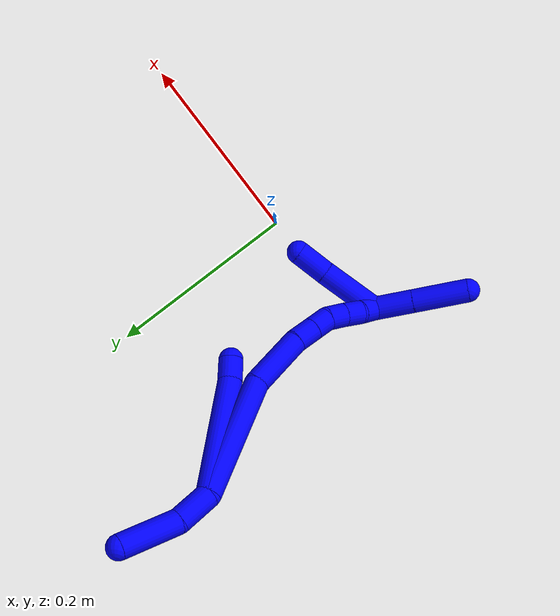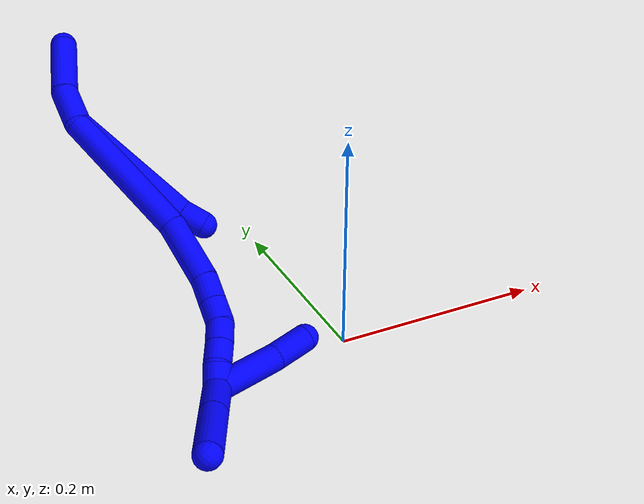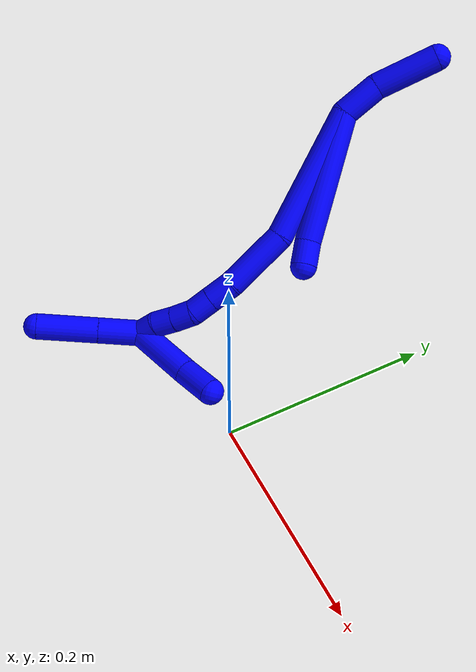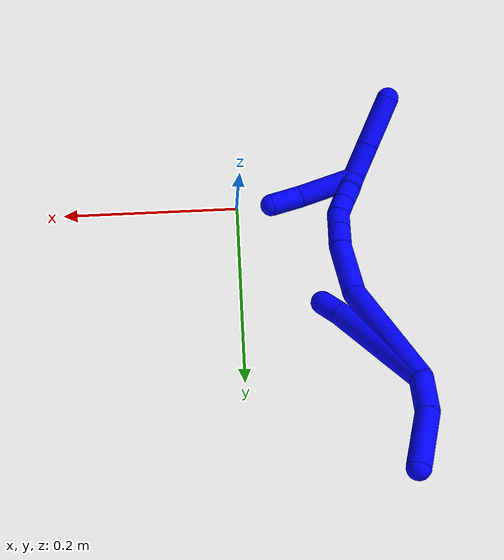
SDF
<sdf version="1.7">
 <world name="default">
  <model name="1">
   <static>0</static>
   <link name="1">
    <collision name="collision-cylinder-e_1_2_8">
     <pose>0.000417 -0.000638 -0.0631 3.13149 0.006603 1.15732</pose>
     <geometry><cylinder><radius>0.0125</radius><length>0.126209</length></cylinder></geometry>
     <surface>
      <friction><ode><mu>1.16</mu><mu2>1.16</mu2><slip1>0</slip1><slip2>0</slip2></ode></friction>
      <contact><ode><kp>1e+06</kp><kd>1</kd><max_vel>0</max_vel><min_depth>0.001</min_depth></ode></contact>
     </surface>
    </collision>
    <visual name="visual-cylinder-e_1_2_8">
     <pose>0.000417 -0.000638 -0.0631 3.13149 0.006603 1.15732</pose>
     <geometry><cylinder><radius>0.0125</radius><length>0.126209</length></cylinder></geometry>
     <material><ambient>0 0 1 1</ambient></material>
    </visual>
    <collision name="collision-cylinder-e_2_8_6">
     <pose>0.003226 -0.001074 -0.13785 -3.12428 0.202552 -2.97163</pose>
     <geometry><cylinder><radius>0.0125</radius><length>0.023791</length></cylinder></geometry>
     <surface>
      <friction><ode><mu>1.16</mu><mu2>1.16</mu2><slip1>0</slip1><slip2>0</slip2></ode></friction>
      <contact><ode><kp>1e+06</kp><kd>1</kd><max_vel>0</max_vel><min_depth>0.001</min_depth></ode></contact>
     </surface>
    </collision>
    <visual name="visual-cylinder-e_2_8_6">
     <pose>0.003226 -0.001074 -0.13785 -3.12428 0.202552 -2.97163</pose>
     <geometry><cylinder><radius>0.0125</radius><length>0.023791</length></cylinder></geometry>
     <material><ambient>0 0 1 1</ambient></material>
    </visual>
    <collision name="collision-cylinder-e_1_2_9">
     <pose>0.005727 0.00984 0.01571 -0.559576 0.299655 -0.086694</pose>
     <geometry><cylinder><radius>0.0125</radius><length>0.038803</length></cylinder></geometry>
     <surface>
      <friction><ode><mu>1.16</mu><mu2>1.16</mu2><slip1>0</slip1><slip2>0</slip2></ode></friction>
      <contact><ode><kp>1e+06</kp><kd>1</kd><max_vel>0</max_vel><min_depth>0.001</min_depth></ode></contact>
     </surface>
    </collision>
    <visual name="visual-cylinder-e_1_2_9">
     <pose>0.005727 0.00984 0.01571 -0.559576 0.299655 -0.086694</pose>
     <geometry><cylinder><radius>0.0125</radius><length>0.038803</length></cylinder></geometry>
     <material><ambient>0 0 1 1</ambient></material>
    </visual>
    <collision name="collision-cylinder-e_2_9_5">
     <pose>0.026149 0.039052 0.049995 -0.806385 0.500922 -0.217397</pose>
     <geometry><cylinder><radius>0.0125</radius><length>0.061197</length></cylinder></geometry>
     <surface>
      <friction><ode><mu>1.16</mu><mu2>1.16</mu2><slip1>0</slip1><slip2>0</slip2></ode></friction>
      <contact><ode><kp>1e+06</kp><kd>1</kd><max_vel>0</max_vel><min_depth>0.001</min_depth></ode></contact>
     </surface>
    </collision>
    <visual name="visual-cylinder-e_2_9_5">
     <pose>0.026149 0.039052 0.049995 -0.806385 0.500922 -0.217397</pose>
     <geometry><cylinder><radius>0.0125</radius><length>0.061197</length></cylinder></geometry>
     <material><ambient>0 0 1 1</ambient></material>
    </visual>
    <collision name="collision-cylinder-e_1_2_10">
     <pose>-0.005009 -0.01286 -0.063945 2.94313 -0.076643 -0.735206</pose>
     <geometry><cylinder><radius>0.0125</radius><length>0.130835</length></cylinder></geometry>
     <surface>
      <friction><ode><mu>1.16</mu><mu2>1.16</mu2><slip1>0</slip1><slip2>0</slip2></ode></friction>
      <contact><ode><kp>1e+06</kp><kd>1</kd><max_vel>0</max_vel><min_depth>0.001</min_depth></ode></contact>
     </surface>
    </collision>
    <visual name="visual-cylinder-e_1_2_10">
     <pose>-0.005009 -0.01286 -0.063945 2.94313 -0.076643 -0.735206</pose>
     <geometry><cylinder><radius>0.0125</radius><length>0.130835</length></cylinder></geometry>
     <material><ambient>0 0 1 1</ambient></material>
    </visual>
    <collision name="collision-cylinder-e_2_10_11">
     <pose>-0.016788 -0.040157 -0.15518 2.65499 -0.215856 -0.823152</pose>
     <geometry><cylinder><radius>0.0125</radius><length>0.063215</length></cylinder></geometry>
     <surface>
      <friction><ode><mu>1.16</mu><mu2>1.16</mu2><slip1>0</slip1><slip2>0</slip2></ode></friction>
      <contact><ode><kp>1e+06</kp><kd>1</kd><max_vel>0</max_vel><min_depth>0.001</min_depth></ode></contact>
     </surface>
    </collision>
    <visual name="visual-cylinder-e_2_10_11">
     <pose>-0.016788 -0.040157 -0.15518 2.65499 -0.215856 -0.823152</pose>
     <geometry><cylinder><radius>0.0125</radius><length>0.063215</length></cylinder></geometry>
     <material><ambient>0 0 1 1</ambient></material>
    </visual>
    <collision name="collision-cylinder-e_3_11_12">
     <pose>-0.02786 -0.061076 -0.191869 2.53787 -0.360433 -1.05882</pose>
     <geometry><cylinder><radius>0.0125</radius><length>0.0244</length></cylinder></geometry>
     <surface>
      <friction><ode><mu>1.16</mu><mu2>1.16</mu2><slip1>0</slip1><slip2>0</slip2></ode></friction>
      <contact><ode><kp>1e+06</kp><kd>1</kd><max_vel>0</max_vel><min_depth>0.001</min_depth></ode></contact>
     </surface>
    </collision>
    <visual name="visual-cylinder-e_3_11_12">
     <pose>-0.02786 -0.061076 -0.191869 2.53787 -0.360433 -1.05882</pose>
     <geometry><cylinder><radius>0.0125</radius><length>0.0244</length></cylinder></geometry>
     <material><ambient>0 0 1 1</ambient></material>
    </visual>
    <collision name="collision-cylinder-e_4_12_13">
     <pose>-0.035927 -0.073065 -0.209414 2.54712 -0.365559 -1.0859</pose>
     <geometry><cylinder><radius>0.0125</radius><length>0.021059</length></cylinder></geometry>
     <surface>
      <friction><ode><mu>1.16</mu><mu2>1.16</mu2><slip1>0</slip1><slip2>0</slip2></ode></friction>
      <contact><ode><kp>1e+06</kp><kd>1</kd><max_vel>0</max_vel><min_depth>0.001</min_depth></ode></contact>
     </surface>
    </collision>
    <visual name="visual-cylinder-e_4_12_13">
     <pose>-0.035927 -0.073065 -0.209414 2.54712 -0.365559 -1.0859</pose>
     <geometry><cylinder><radius>0.0125</radius><length>0.021059</length></cylinder></geometry>
     <material><ambient>0 0 1 1</ambient></material>
    </visual>
    <collision name="collision-cylinder-e_5_13_14">
     <pose>-0.045599 -0.084839 -0.222916 2.27794 -0.621827 -1.21781</pose>
     <geometry><cylinder><radius>0.0125</radius><length>0.020284</length></cylinder></geometry>
     <surface>
      <friction><ode><mu>1.16</mu><mu2>1.16</mu2><slip1>0</slip1><slip2>0</slip2></ode></friction>
      <contact><ode><kp>1e+06</kp><kd>1</kd><max_vel>0</max_vel><min_depth>0.001</min_depth></ode></contact>
     </surface>
    </collision>
    <visual name="visual-cylinder-e_5_13_14">
     <pose>-0.045599 -0.084839 -0.222916 2.27794 -0.621827 -1.21781</pose>
     <geometry><cylinder><radius>0.0125</radius><length>0.020284</length></cylinder></geometry>
     <material><ambient>0 0 1 1</ambient></material>
    </visual>
    <collision name="collision-cylinder-e_6_14_15">
     <pose>-0.057438 -0.097628 -0.233016 2.19975 -0.634157 -1.14505</pose>
     <geometry><cylinder><radius>0.0125</radius><length>0.020022</length></cylinder></geometry>
     <surface>
      <friction><ode><mu>1.16</mu><mu2>1.16</mu2><slip1>0</slip1><slip2>0</slip2></ode></friction>
      <contact><ode><kp>1e+06</kp><kd>1</kd><max_vel>0</max_vel><min_depth>0.001</min_depth></ode></contact>
     </surface>
    </collision>
    <visual name="visual-cylinder-e_6_14_15">
     <pose>-0.057438 -0.097628 -0.233016 2.19975 -0.634157 -1.14505</pose>
     <geometry><cylinder><radius>0.0125</radius><length>0.020022</length></cylinder></geometry>
     <material><ambient>0 0 1 1</ambient></material>
    </visual>
    <collision name="collision-cylinder-e_7_15_1">
     <pose>-0.069968 -0.108653 -0.243928 2.51086 -0.712513 -1.702</pose>
     <geometry><cylinder><radius>0.0125</radius><length>0.020184</length></cylinder></geometry>
     <surface>
      <friction><ode><mu>1.16</mu><mu2>1.16</mu2><slip1>0</slip1><slip2>0</slip2></ode></friction>
      <contact><ode><kp>1e+06</kp><kd>1</kd><max_vel>0</max_vel><min_depth>0.001</min_depth></ode></contact>
     </surface>
    </collision>
    <visual name="visual-cylinder-e_7_15_1">
     <pose>-0.069968 -0.108653 -0.243928 2.51086 -0.712513 -1.702</pose>
     <geometry><cylinder><radius>0.0125</radius><length>0.020184</length></cylinder></geometry>
     <material><ambient>0 0 1 1</ambient></material>
    </visual>
    <collision name="collision-cylinder-e_1_1_16">
     <pose>-0.081042 -0.132873 -0.254249 1.77843 -0.218636 -0.26894</pose>
     <geometry><cylinder><radius>0.0125</radius><length>0.04128</length></cylinder></geometry>
     <surface>
      <friction><ode><mu>1.16</mu><mu2>1.16</mu2><slip1>0</slip1><slip2>0</slip2></ode></friction>
      <contact><ode><kp>1e+06</kp><kd>1</kd><max_vel>0</max_vel><min_depth>0.001</min_depth></ode></contact>
     </surface>
    </collision>
    <visual name="visual-cylinder-e_1_1_16">
     <pose>-0.081042 -0.132873 -0.254249 1.77843 -0.218636 -0.26894</pose>
     <geometry><cylinder><radius>0.0125</radius><length>0.04128</length></cylinder></geometry>
     <material><ambient>0 0 1 1</ambient></material>
    </visual>
    <collision name="collision-cylinder-e_2_16_4">
     <pose>-0.091769 -0.180664 -0.264293 1.77759 -0.214527 -0.263682</pose>
     <geometry><cylinder><radius>0.0125</radius><length>0.05872</length></cylinder></geometry>
     <surface>
      <friction><ode><mu>1.16</mu><mu2>1.16</mu2><slip1>0</slip1><slip2>0</slip2></ode></friction>
      <contact><ode><kp>1e+06</kp><kd>1</kd><max_vel>0</max_vel><min_depth>0.001</min_depth></ode></contact>
     </surface>
    </collision>
    <visual name="visual-cylinder-e_2_16_4">
     <pose>-0.091769 -0.180664 -0.264293 1.77759 -0.214527 -0.263682</pose>
     <geometry><cylinder><radius>0.0125</radius><length>0.05872</length></cylinder></geometry>
     <material><ambient>0 0 1 1</ambient></material>
    </visual>
    <collision name="collision-cylinder-e_1_1_17">
     <pose>-0.054383 -0.092874 -0.261838 -2.09555 0.757915 -1.20882</pose>
     <geometry><cylinder><radius>0.0125</radius><length>0.06454</length></cylinder></geometry>
     <surface>
      <friction><ode><mu>1.16</mu><mu2>1.16</mu2><slip1>0</slip1><slip2>0</slip2></ode></friction>
      <contact><ode><kp>1e+06</kp><kd>1</kd><max_vel>0</max_vel><min_depth>0.001</min_depth></ode></contact>
     </surface>
    </collision>
    <visual name="visual-cylinder-e_1_1_17">
     <pose>-0.054383 -0.092874 -0.261838 -2.09555 0.757915 -1.20882</pose>
     <geometry><cylinder><radius>0.0125</radius><length>0.06454</length></cylinder></geometry>
     <material><ambient>0 0 1 1</ambient></material>
    </visual>
    <collision name="collision-cylinder-e_2_17_3">
     <pose>-0.018395 -0.062832 -0.278922 -2.07171 0.892494 -1.35845</pose>
     <geometry><cylinder><radius>0.0125</radius><length>0.03546</length></cylinder></geometry>
     <surface>
      <friction><ode><mu>1.16</mu><mu2>1.16</mu2><slip1>0</slip1><slip2>0</slip2></ode></friction>
      <contact><ode><kp>1e+06</kp><kd>1</kd><max_vel>0</max_vel><min_depth>0.001</min_depth></ode></contact>
     </surface>
    </collision>
    <visual name="visual-cylinder-e_2_17_3">
     <pose>-0.018395 -0.062832 -0.278922 -2.07171 0.892494 -1.35845</pose>
     <geometry><cylinder><radius>0.0125</radius><length>0.03546</length></cylinder></geometry>
     <material><ambient>0 0 1 1</ambient></material>
    </visual>
    <collision name="collision-sphere-3">
     <pose>-0.004589 -0.053074 -0.284265 0 -0 0</pose>
     <geometry><sphere><radius>0.0125</radius></sphere></geometry>
     <surface>
      <friction><ode><mu>1.16</mu><mu2>1.16</mu2><slip1>0</slip1><slip2>0</slip2></ode></friction>
      <contact><ode><kp>1e+06</kp><kd>1</kd><max_vel>0</max_vel><min_depth>0.001</min_depth></ode></contact>
     </surface>
    </collision>
    <visual name="visual-sphere-3">
     <pose>-0.004589 -0.053074 -0.284265 0 -0 0</pose>
     <geometry><sphere><radius>0.0125</radius></sphere></geometry>
     <material><ambient>0 0 1 1</ambient></material>
    </visual>
    <collision name="collision-sphere-17">
     <pose>-0.0322 -0.07259 -0.27358 0 -0 0</pose>
     <geometry><sphere><radius>0.0125</radius></sphere></geometry>
     <surface>
      <friction><ode><mu>1.16</mu><mu2>1.16</mu2><slip1>0</slip1><slip2>0</slip2></ode></friction>
      <contact><ode><kp>1e+06</kp><kd>1</kd><max_vel>0</max_vel><min_depth>0.001</min_depth></ode></contact>
     </surface>
    </collision>
    <visual name="visual-sphere-17">
     <pose>-0.0322 -0.07259 -0.27358 0 -0 0</pose>
     <geometry><sphere><radius>0.0125</radius></sphere></geometry>
     <material><ambient>0 0 1 1</ambient></material>
    </visual>
    <collision name="collision-sphere-4">
     <pose>-0.098019 -0.20874 -0.270183 0 -0 0</pose>
     <geometry><sphere><radius>0.0125</radius></sphere></geometry>
     <surface>
      <friction><ode><mu>1.16</mu><mu2>1.16</mu2><slip1>0</slip1><slip2>0</slip2></ode></friction>
      <contact><ode><kp>1e+06</kp><kd>1</kd><max_vel>0</max_vel><min_depth>0.001</min_depth></ode></contact>
     </surface>
    </collision>
    <visual name="visual-sphere-4">
     <pose>-0.098019 -0.20874 -0.270183 0 -0 0</pose>
     <geometry><sphere><radius>0.0125</radius></sphere></geometry>
     <material><ambient>0 0 1 1</ambient></material>
    </visual>
    <collision name="collision-sphere-16">
     <pose>-0.085519 -0.152588 -0.258403 0 -0 0</pose>
     <geometry><sphere><radius>0.0125</radius></sphere></geometry>
     <surface>
      <friction><ode><mu>1.16</mu><mu2>1.16</mu2><slip1>0</slip1><slip2>0</slip2></ode></friction>
      <contact><ode><kp>1e+06</kp><kd>1</kd><max_vel>0</max_vel><min_depth>0.001</min_depth></ode></contact>
     </surface>
    </collision>
    <visual name="visual-sphere-16">
     <pose>-0.085519 -0.152588 -0.258403 0 -0 0</pose>
     <geometry><sphere><radius>0.0125</radius></sphere></geometry>
     <material><ambient>0 0 1 1</ambient></material>
    </visual>
    <collision name="collision-sphere-1">
     <pose>-0.076565 -0.113157 -0.250096 0 -0 0</pose>
     <geometry><sphere><radius>0.0125</radius></sphere></geometry>
     <surface>
      <friction><ode><mu>1.16</mu><mu2>1.16</mu2><slip1>0</slip1><slip2>0</slip2></ode></friction>
      <contact><ode><kp>1e+06</kp><kd>1</kd><max_vel>0</max_vel><min_depth>0.001</min_depth></ode></contact>
     </surface>
    </collision>
    <visual name="visual-sphere-1">
     <pose>-0.076565 -0.113157 -0.250096 0 -0 0</pose>
     <geometry><sphere><radius>0.0125</radius></sphere></geometry>
     <material><ambient>0 0 1 1</ambient></material>
    </visual>
    <collision name="collision-sphere-15">
     <pose>-0.06337 -0.104149 -0.237761 0 -0 0</pose>
     <geometry><sphere><radius>0.0125</radius></sphere></geometry>
     <surface>
      <friction><ode><mu>1.16</mu><mu2>1.16</mu2><slip1>0</slip1><slip2>0</slip2></ode></friction>
      <contact><ode><kp>1e+06</kp><kd>1</kd><max_vel>0</max_vel><min_depth>0.001</min_depth></ode></contact>
     </surface>
    </collision>
    <visual name="visual-sphere-15">
     <pose>-0.06337 -0.104149 -0.237761 0 -0 0</pose>
     <geometry><sphere><radius>0.0125</radius></sphere></geometry>
     <material><ambient>0 0 1 1</ambient></material>
    </visual>
    <collision name="collision-sphere-14">
     <pose>-0.051507 -0.091106 -0.228272 0 -0 0</pose>
     <geometry><sphere><radius>0.0125</radius></sphere></geometry>
     <surface>
      <friction><ode><mu>1.16</mu><mu2>1.16</mu2><slip1>0</slip1><slip2>0</slip2></ode></friction>
      <contact><ode><kp>1e+06</kp><kd>1</kd><max_vel>0</max_vel><min_depth>0.001</min_depth></ode></contact>
     </surface>
    </collision>
    <visual name="visual-sphere-14">
     <pose>-0.051507 -0.091106 -0.228272 0 -0 0</pose>
     <geometry><sphere><radius>0.0125</radius></sphere></geometry>
     <material><ambient>0 0 1 1</ambient></material>
    </visual>
    <collision name="collision-sphere-13">
     <pose>-0.039691 -0.078573 -0.217561 0 -0 0</pose>
     <geometry><sphere><radius>0.0125</radius></sphere></geometry>
     <surface>
      <friction><ode><mu>1.16</mu><mu2>1.16</mu2><slip1>0</slip1><slip2>0</slip2></ode></friction>
      <contact><ode><kp>1e+06</kp><kd>1</kd><max_vel>0</max_vel><min_depth>0.001</min_depth></ode></contact>
     </surface>
    </collision>
    <visual name="visual-sphere-13">
     <pose>-0.039691 -0.078573 -0.217561 0 -0 0</pose>
     <geometry><sphere><radius>0.0125</radius></sphere></geometry>
     <material><ambient>0 0 1 1</ambient></material>
    </visual>
    <collision name="collision-sphere-12">
     <pose>-0.032163 -0.067557 -0.201267 0 -0 0</pose>
     <geometry><sphere><radius>0.0125</radius></sphere></geometry>
     <surface>
      <friction><ode><mu>1.16</mu><mu2>1.16</mu2><slip1>0</slip1><slip2>0</slip2></ode></friction>
      <contact><ode><kp>1e+06</kp><kd>1</kd><max_vel>0</max_vel><min_depth>0.001</min_depth></ode></contact>
     </surface>
    </collision>
    <visual name="visual-sphere-12">
     <pose>-0.032163 -0.067557 -0.201267 0 -0 0</pose>
     <geometry><sphere><radius>0.0125</radius></sphere></geometry>
     <material><ambient>0 0 1 1</ambient></material>
    </visual>
    <collision name="collision-sphere-11">
     <pose>-0.023557 -0.054595 -0.182471 0 -0 0</pose>
     <geometry><sphere><radius>0.0125</radius></sphere></geometry>
     <surface>
      <friction><ode><mu>1.16</mu><mu2>1.16</mu2><slip1>0</slip1><slip2>0</slip2></ode></friction>
      <contact><ode><kp>1e+06</kp><kd>1</kd><max_vel>0</max_vel><min_depth>0.001</min_depth></ode></contact>
     </surface>
    </collision>
    <visual name="visual-sphere-11">
     <pose>-0.023557 -0.054595 -0.182471 0 -0 0</pose>
     <geometry><sphere><radius>0.0125</radius></sphere></geometry>
     <material><ambient>0 0 1 1</ambient></material>
    </visual>
    <collision name="collision-sphere-8">
     <pose>0.000833 -0.001276 -0.1262 0 -0 0</pose>
     <geometry><sphere><radius>0.0125</radius></sphere></geometry>
     <surface>
      <friction><ode><mu>1.16</mu><mu2>1.16</mu2><slip1>0</slip1><slip2>0</slip2></ode></friction>
      <contact><ode><kp>1e+06</kp><kd>1</kd><max_vel>0</max_vel><min_depth>0.001</min_depth></ode></contact>
     </surface>
    </collision>
    <visual name="visual-sphere-8">
     <pose>0.000833 -0.001276 -0.1262 0 -0 0</pose>
     <geometry><sphere><radius>0.0125</radius></sphere></geometry>
     <material><ambient>0 0 1 1</ambient></material>
    </visual>
    <collision name="collision-sphere-2">
     <geometry><sphere><radius>0.0125</radius></sphere></geometry>
     <surface>
      <friction><ode><mu>1.16</mu><mu2>1.16</mu2><slip1>0</slip1><slip2>0</slip2></ode></friction>
      <contact><ode><kp>1e+06</kp><kd>1</kd><max_vel>0</max_vel><min_depth>0.001</min_depth></ode></contact>
     </surface>
    </collision>
    <visual name="visual-sphere-2">
     <geometry><sphere><radius>0.0125</radius></sphere></geometry>
     <material><ambient>0 0 1 1</ambient></material>
    </visual>
    <collision name="collision-sphere-9">
     <pose>0.011454 0.01968 0.031419 0 -0 0</pose>
     <geometry><sphere><radius>0.0125</radius></sphere></geometry>
     <surface>
      <friction><ode><mu>1.16</mu><mu2>1.16</mu2><slip1>0</slip1><slip2>0</slip2></ode></friction>
      <contact><ode><kp>1e+06</kp><kd>1</kd><max_vel>0</max_vel><min_depth>0.001</min_depth></ode></contact>
     </surface>
    </collision>
    <visual name="visual-sphere-9">
     <pose>0.011454 0.01968 0.031419 0 -0 0</pose>
     <geometry><sphere><radius>0.0125</radius></sphere></geometry>
     <material><ambient>0 0 1 1</ambient></material>
    </visual>
    <collision name="collision-sphere-6">
     <pose>0.005619 -0.000872 -0.149501 0 -0 0</pose>
     <geometry><sphere><radius>0.0125</radius></sphere></geometry>
     <surface>
      <friction><ode><mu>1.16</mu><mu2>1.16</mu2><slip1>0</slip1><slip2>0</slip2></ode></friction>
      <contact><ode><kp>1e+06</kp><kd>1</kd><max_vel>0</max_vel><min_depth>0.001</min_depth></ode></contact>
     </surface>
    </collision>
    <visual name="visual-sphere-6">
     <pose>0.005619 -0.000872 -0.149501 0 -0 0</pose>
     <geometry><sphere><radius>0.0125</radius></sphere></geometry>
     <material><ambient>0 0 1 1</ambient></material>
    </visual>
    <collision name="collision-sphere-5">
     <pose>0.040843 0.058424 0.068571 0 -0 0</pose>
     <geometry><sphere><radius>0.0125</radius></sphere></geometry>
     <surface>
      <friction><ode><mu>1.16</mu><mu2>1.16</mu2><slip1>0</slip1><slip2>0</slip2></ode></friction>
      <contact><ode><kp>1e+06</kp><kd>1</kd><max_vel>0</max_vel><min_depth>0.001</min_depth></ode></contact>
     </surface>
    </collision>
    <visual name="visual-sphere-5">
     <pose>0.040843 0.058424 0.068571 0 -0 0</pose>
     <geometry><sphere><radius>0.0125</radius></sphere></geometry>
     <material><ambient>0 0 1 1</ambient></material>
    </visual>
    <collision name="collision-sphere-10">
     <pose>-0.010018 -0.02572 -0.12789 0 -0 0</pose>
     <geometry><sphere><radius>0.0125</radius></sphere></geometry>
     <surface>
      <friction><ode><mu>1.16</mu><mu2>1.16</mu2><slip1>0</slip1><slip2>0</slip2></ode></friction>
      <contact><ode><kp>1e+06</kp><kd>1</kd><max_vel>0</max_vel><min_depth>0.001</min_depth></ode></contact>
     </surface>
    </collision>
    <visual name="visual-sphere-10">
     <pose>-0.010018 -0.02572 -0.12789 0 -0 0</pose>
     <geometry><sphere><radius>0.0125</radius></sphere></geometry>
     <material><ambient>0 0 1 1</ambient></material>
    </visual>
    <inertial>
     <pose>-0.023446 -0.046358 -0.135676 0 -0 0</pose>
     <mass>0.75</mass>
     <inertia><ixx>0.00026</ixx><ixy>0</ixy><ixz>0</ixz><iyy>-0.000219</iyy><iyz>0</iyz><izz>9e-06</izz></inertia>
    </inertial>
   </link>
   <pose>-0.172013 0.208932 0.165969 -0.608417 -0.763442 -0.021243</pose>
  </model>
 </world>
</sdf>
